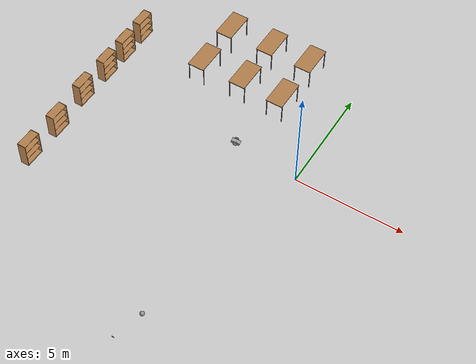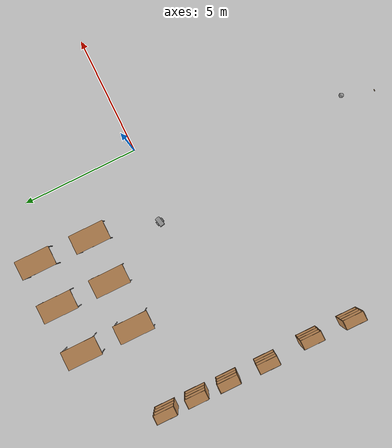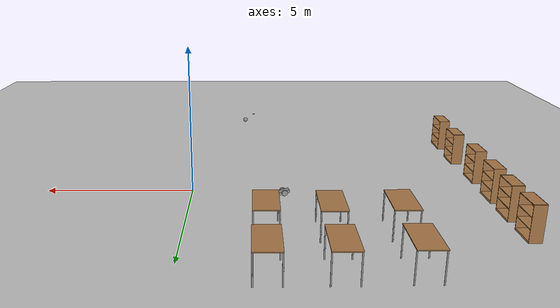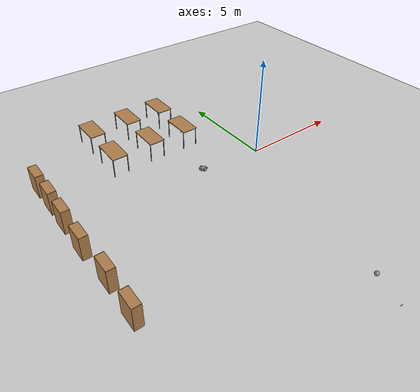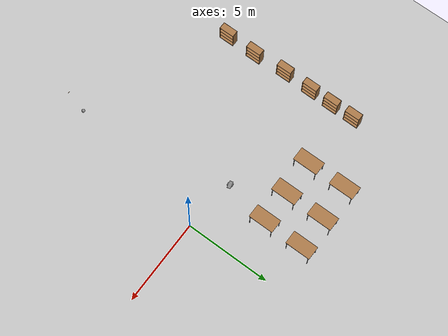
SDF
<sdf version="1.6">
 <world name="default">
  <model name="ground_plane">
   <static>1</static>
   <link name="link">
    <collision name="collision">
     <geometry><plane><normal>0 0 1</normal><size>100 100</size></plane></geometry>
     <surface>
      <contact><collide_bitmask>65535</collide_bitmask></contact>
      <friction><ode><mu>100</mu><mu2>50</mu2></ode></friction>
     </surface>
    </collision>
    <visual name="visual">
     <cast_shadows>0</cast_shadows>
     <geometry><plane><normal>0 0 1</normal><size>100 100</size></plane></geometry>
     <material>
      <script><uri>file://media/materials/scripts/gazebo.material</uri><name>Gazebo/Grey</name></script>
     </material>
    </visual>
   </link>
  </model>
  <model name="bookshelf">
   <static>1</static>
   <link name="link">
    <inertial><mass>1</mass></inertial>
    <collision name="back">
     <pose>0 0.005 0.6 0 -0 0</pose>
     <geometry><box><size>0.9 0.01 1.2</size></box></geometry>
    </collision>
    <visual name="visual1">
     <pose>0 0.005 0.6 0 -0 0</pose>
     <geometry><box><size>0.9 0.01 1.2</size></box></geometry>
     <material>
      <script><uri>file://media/materials/scripts/gazebo.material</uri><name>Gazebo/Wood</name></script>
     </material>
    </visual>
    <collision name="left_side">
     <pose>0.45 -0.195 0.6 0 -0 0</pose>
     <geometry><box><size>0.02 0.4 1.2</size></box></geometry>
    </collision>
    <visual name="visual2">
     <pose>0.45 -0.195 0.6 0 -0 0</pose>
     <geometry><box><size>0.02 0.4 1.2</size></box></geometry>
     <material>
      <script><uri>file://media/materials/scripts/gazebo.material</uri><name>Gazebo/Wood</name></script>
     </material>
    </visual>
    <collision name="right_side">
     <pose>-0.45 -0.195 0.6 0 -0 0</pose>
     <geometry><box><size>0.02 0.4 1.2</size></box></geometry>
    </collision>
    <visual name="visual3">
     <pose>-0.45 -0.195 0.6 0 -0 0</pose>
     <geometry><box><size>0.02 0.4 1.2</size></box></geometry>
     <material>
      <script><uri>file://media/materials/scripts/gazebo.material</uri><name>Gazebo/Wood</name></script>
     </material>
    </visual>
    <collision name="bottom">
     <pose>0 -0.195 0.03 0 -0 0</pose>
     <geometry><box><size>0.88 0.4 0.06</size></box></geometry>
    </collision>
    <visual name="visual4">
     <pose>0 -0.195 0.03 0 -0 0</pose>
     <geometry><box><size>0.88 0.4 0.06</size></box></geometry>
     <material>
      <script><uri>file://media/materials/scripts/gazebo.material</uri><name>Gazebo/Wood</name></script>
     </material>
    </visual>
    <collision name="top">
     <pose>0 -0.195 1.19 0 -0 0</pose>
     <geometry><box><size>0.88 0.4 0.02</size></box></geometry>
    </collision>
    <visual name="visual5">
     <pose>0 -0.195 1.19 0 -0 0</pose>
     <geometry><box><size>0.88 0.4 0.02</size></box></geometry>
     <material>
      <script><uri>file://media/materials/scripts/gazebo.material</uri><name>Gazebo/Wood</name></script>
     </material>
    </visual>
    <collision name="low_shelf">
     <pose>0 -0.195 0.43 0 -0 0</pose>
     <geometry><box><size>0.88 0.4 0.02</size></box></geometry>
    </collision>
    <visual name="visual6">
     <pose>0 -0.195 0.43 0 -0 0</pose>
     <geometry><box><size>0.88 0.4 0.02</size></box></geometry>
     <material>
      <script><uri>file://media/materials/scripts/gazebo.material</uri><name>Gazebo/Wood</name></script>
     </material>
    </visual>
    <collision name="high_shelf">
     <pose>0 -0.195 0.8 0 -0 0</pose>
     <geometry><box><size>0.88 0.4 0.02</size></box></geometry>
    </collision>
    <visual name="visual7">
     <pose>0 -0.195 0.8 0 -0 0</pose>
     <geometry><box><size>0.88 0.4 0.02</size></box></geometry>
     <material>
      <script><uri>file://media/materials/scripts/gazebo.material</uri><name>Gazebo/Wood</name></script>
     </material>
    </visual>
   </link>
   <pose>-10.3049 3.46726 0 0 -0 1.5708</pose>
  </model>
  <model name="table">
   <static>1</static>
   <link name="link">
    <collision name="surface">
     <pose>0 0 1 0 -0 0</pose>
     <geometry><box><size>1.5 0.8 0.03</size></box></geometry>
     <surface><friction><ode><mu>0.6</mu><mu2>0.6</mu2></ode></friction></surface>
    </collision>
    <visual name="visual1">
     <pose>0 0 1 0 -0 0</pose>
     <geometry><box><size>1.5 0.8 0.03</size></box></geometry>
     <material>
      <script><uri>file://media/materials/scripts/gazebo.material</uri><name>Gazebo/Wood</name></script>
     </material>
    </visual>
    <collision name="front_left_leg">
     <pose>0.68 0.38 0.5 0 -0 0</pose>
     <geometry><cylinder><radius>0.02</radius><length>1</length></cylinder></geometry>
    </collision>
    <visual name="front_left_leg">
     <pose>0.68 0.38 0.5 0 -0 0</pose>
     <geometry><cylinder><radius>0.02</radius><length>1</length></cylinder></geometry>
     <material>
      <script><uri>file://media/materials/scripts/gazebo.material</uri><name>Gazebo/Grey</name></script>
     </material>
    </visual>
    <collision name="front_right_leg">
     <pose>0.68 -0.38 0.5 0 -0 0</pose>
     <geometry><cylinder><radius>0.02</radius><length>1</length></cylinder></geometry>
    </collision>
    <visual name="front_right_leg">
     <pose>0.68 -0.38 0.5 0 -0 0</pose>
     <geometry><cylinder><radius>0.02</radius><length>1</length></cylinder></geometry>
     <material>
      <script><uri>file://media/materials/scripts/gazebo.material</uri><name>Gazebo/Grey</name></script>
     </material>
    </visual>
    <collision name="back_right_leg">
     <pose>-0.68 -0.38 0.5 0 -0 0</pose>
     <geometry><cylinder><radius>0.02</radius><length>1</length></cylinder></geometry>
    </collision>
    <visual name="back_right_leg">
     <pose>-0.68 -0.38 0.5 0 -0 0</pose>
     <geometry><cylinder><radius>0.02</radius><length>1</length></cylinder></geometry>
     <material>
      <script><uri>file://media/materials/scripts/gazebo.material</uri><name>Gazebo/Grey</name></script>
     </material>
    </visual>
    <collision name="back_left_leg">
     <pose>-0.68 0.38 0.5 0 -0 0</pose>
     <geometry><cylinder><radius>0.02</radius><length>1</length></cylinder></geometry>
    </collision>
    <visual name="back_left_leg">
     <pose>-0.68 0.38 0.5 0 -0 0</pose>
     <geometry><cylinder><radius>0.02</radius><length>1</length></cylinder></geometry>
     <material>
      <script><uri>file://media/materials/scripts/gazebo.material</uri><name>Gazebo/Grey</name></script>
     </material>
    </visual>
   </link>
   <pose>-6.47493 5.4138 0 0 -0 1.5708</pose>
  </model>
  <model name="wood_block_10_2_1cm">
   <link name="link">
    <pose>0 0 0.005 0 -0 0</pose>
    <inertial>
     <mass>0.0125</mass>
     <inertia>
      <ixx>7.55208e-07</ixx>
      <ixy>0</ixy>
      <ixz>0</ixz>
      <iyy>1.05208e-05</iyy>
      <iyz>0</iyz>
      <izz>1.10677e-05</izz>
     </inertia>
    </inertial>
    <collision name="collision">
     <geometry><box><size>0.1 0.025 0.01</size></box></geometry>
     <surface>
      <contact>
       <poissons_ratio>0.347</poissons_ratio>
       <elastic_modulus>8.8e+09</elastic_modulus>
       <ode><kp>100000</kp><kd>1</kd><max_vel>1</max_vel><min_depth>0.001</min_depth></ode>
      </contact>
      <friction>
       <torsional>
        <coefficient>1</coefficient>
        <use_patch_radius>0</use_patch_radius>
        <surface_radius>0.05</surface_radius>
       </torsional>
      </friction>
     </surface>
    </collision>
    <visual name="visual">
     <geometry><box><size>0.1 0.025 0.01</size></box></geometry>
     <material>
      <script><uri>file://media/materials/scripts/gazebo.material</uri><name>Gazebo/Wood</name></script>
     </material>
    </visual>
   </link>
   <pose>-2.12101 -10.0279 -0.001 0 -0 0</pose>
  </model>
  <model name="table_clone">
   <static>1</static>
   <link name="link">
    <collision name="surface">
     <pose>0 0 1 0 -0 0</pose>
     <geometry><box><size>1.5 0.8 0.03</size></box></geometry>
     <surface><friction><ode><mu>0.6</mu><mu2>0.6</mu2></ode></friction></surface>
    </collision>
    <visual name="visual1">
     <pose>0 0 1 0 -0 0</pose>
     <geometry><box><size>1.5 0.8 0.03</size></box></geometry>
     <material>
      <script><uri>file://media/materials/scripts/gazebo.material</uri><name>Gazebo/Wood</name></script>
     </material>
    </visual>
    <collision name="front_left_leg">
     <pose>0.68 0.38 0.5 0 -0 0</pose>
     <geometry><cylinder><radius>0.02</radius><length>1</length></cylinder></geometry>
    </collision>
    <visual name="front_left_leg">
     <pose>0.68 0.38 0.5 0 -0 0</pose>
     <geometry><cylinder><radius>0.02</radius><length>1</length></cylinder></geometry>
     <material>
      <script><uri>file://media/materials/scripts/gazebo.material</uri><name>Gazebo/Grey</name></script>
     </material>
    </visual>
    <collision name="front_right_leg">
     <pose>0.68 -0.38 0.5 0 -0 0</pose>
     <geometry><cylinder><radius>0.02</radius><length>1</length></cylinder></geometry>
    </collision>
    <visual name="front_right_leg">
     <pose>0.68 -0.38 0.5 0 -0 0</pose>
     <geometry><cylinder><radius>0.02</radius><length>1</length></cylinder></geometry>
     <material>
      <script><uri>file://media/materials/scripts/gazebo.material</uri><name>Gazebo/Grey</name></script>
     </material>
    </visual>
    <collision name="back_right_leg">
     <pose>-0.68 -0.38 0.5 0 -0 0</pose>
     <geometry><cylinder><radius>0.02</radius><length>1</length></cylinder></geometry>
    </collision>
    <visual name="back_right_leg">
     <pose>-0.68 -0.38 0.5 0 -0 0</pose>
     <geometry><cylinder><radius>0.02</radius><length>1</length></cylinder></geometry>
     <material>
      <script><uri>file://media/materials/scripts/gazebo.material</uri><name>Gazebo/Grey</name></script>
     </material>
    </visual>
    <collision name="back_left_leg">
     <pose>-0.68 0.38 0.5 0 -0 0</pose>
     <geometry><cylinder><radius>0.02</radius><length>1</length></cylinder></geometry>
    </collision>
    <visual name="back_left_leg">
     <pose>-0.68 0.38 0.5 0 -0 0</pose>
     <geometry><cylinder><radius>0.02</radius><length>1</length></cylinder></geometry>
     <material>
      <script><uri>file://media/materials/scripts/gazebo.material</uri><name>Gazebo/Grey</name></script>
     </material>
    </visual>
   </link>
   <pose>-4.38863 5.46598 0 0 -0 1.5708</pose>
  </model>
  <model name="table_clone_0">
   <static>1</static>
   <link name="link">
    <collision name="surface">
     <pose>0 0 1 0 -0 0</pose>
     <geometry><box><size>1.5 0.8 0.03</size></box></geometry>
     <surface><friction><ode><mu>0.6</mu><mu2>0.6</mu2></ode></friction></surface>
    </collision>
    <visual name="visual1">
     <pose>0 0 1 0 -0 0</pose>
     <geometry><box><size>1.5 0.8 0.03</size></box></geometry>
     <material>
      <script><uri>file://media/materials/scripts/gazebo.material</uri><name>Gazebo/Wood</name></script>
     </material>
    </visual>
    <collision name="front_left_leg">
     <pose>0.68 0.38 0.5 0 -0 0</pose>
     <geometry><cylinder><radius>0.02</radius><length>1</length></cylinder></geometry>
    </collision>
    <visual name="front_left_leg">
     <pose>0.68 0.38 0.5 0 -0 0</pose>
     <geometry><cylinder><radius>0.02</radius><length>1</length></cylinder></geometry>
     <material>
      <script><uri>file://media/materials/scripts/gazebo.material</uri><name>Gazebo/Grey</name></script>
     </material>
    </visual>
    <collision name="front_right_leg">
     <pose>0.68 -0.38 0.5 0 -0 0</pose>
     <geometry><cylinder><radius>0.02</radius><length>1</length></cylinder></geometry>
    </collision>
    <visual name="front_right_leg">
     <pose>0.68 -0.38 0.5 0 -0 0</pose>
     <geometry><cylinder><radius>0.02</radius><length>1</length></cylinder></geometry>
     <material>
      <script><uri>file://media/materials/scripts/gazebo.material</uri><name>Gazebo/Grey</name></script>
     </material>
    </visual>
    <collision name="back_right_leg">
     <pose>-0.68 -0.38 0.5 0 -0 0</pose>
     <geometry><cylinder><radius>0.02</radius><length>1</length></cylinder></geometry>
    </collision>
    <visual name="back_right_leg">
     <pose>-0.68 -0.38 0.5 0 -0 0</pose>
     <geometry><cylinder><radius>0.02</radius><length>1</length></cylinder></geometry>
     <material>
      <script><uri>file://media/materials/scripts/gazebo.material</uri><name>Gazebo/Grey</name></script>
     </material>
    </visual>
    <collision name="back_left_leg">
     <pose>-0.68 0.38 0.5 0 -0 0</pose>
     <geometry><cylinder><radius>0.02</radius><length>1</length></cylinder></geometry>
    </collision>
    <visual name="back_left_leg">
     <pose>-0.68 0.38 0.5 0 -0 0</pose>
     <geometry><cylinder><radius>0.02</radius><length>1</length></cylinder></geometry>
     <material>
      <script><uri>file://media/materials/scripts/gazebo.material</uri><name>Gazebo/Grey</name></script>
     </material>
    </visual>
   </link>
   <pose>-2.44462 5.48292 0 0 -0 1.5708</pose>
  </model>
  <model name="table_clone_7">
   <static>1</static>
   <link name="link">
    <collision name="surface">
     <pose>0 0 1 0 -0 0</pose>
     <geometry><box><size>1.5 0.8 0.03</size></box></geometry>
     <surface><friction><ode><mu>0.6</mu><mu2>0.6</mu2></ode></friction></surface>
    </collision>
    <visual name="visual1">
     <pose>0 0 1 0 -0 0</pose>
     <geometry><box><size>1.5 0.8 0.03</size></box></geometry>
     <material>
      <script><uri>file://media/materials/scripts/gazebo.material</uri><name>Gazebo/Wood</name></script>
     </material>
    </visual>
    <collision name="front_left_leg">
     <pose>0.68 0.38 0.5 0 -0 0</pose>
     <geometry><cylinder><radius>0.02</radius><length>1</length></cylinder></geometry>
    </collision>
    <visual name="front_left_leg">
     <pose>0.68 0.38 0.5 0 -0 0</pose>
     <geometry><cylinder><radius>0.02</radius><length>1</length></cylinder></geometry>
     <material>
      <script><uri>file://media/materials/scripts/gazebo.material</uri><name>Gazebo/Grey</name></script>
     </material>
    </visual>
    <collision name="front_right_leg">
     <pose>0.68 -0.38 0.5 0 -0 0</pose>
     <geometry><cylinder><radius>0.02</radius><length>1</length></cylinder></geometry>
    </collision>
    <visual name="front_right_leg">
     <pose>0.68 -0.38 0.5 0 -0 0</pose>
     <geometry><cylinder><radius>0.02</radius><length>1</length></cylinder></geometry>
     <material>
      <script><uri>file://media/materials/scripts/gazebo.material</uri><name>Gazebo/Grey</name></script>
     </material>
    </visual>
    <collision name="back_right_leg">
     <pose>-0.68 -0.38 0.5 0 -0 0</pose>
     <geometry><cylinder><radius>0.02</radius><length>1</length></cylinder></geometry>
    </collision>
    <visual name="back_right_leg">
     <pose>-0.68 -0.38 0.5 0 -0 0</pose>
     <geometry><cylinder><radius>0.02</radius><length>1</length></cylinder></geometry>
     <material>
      <script><uri>file://media/materials/scripts/gazebo.material</uri><name>Gazebo/Grey</name></script>
     </material>
    </visual>
    <collision name="back_left_leg">
     <pose>-0.68 0.38 0.5 0 -0 0</pose>
     <geometry><cylinder><radius>0.02</radius><length>1</length></cylinder></geometry>
    </collision>
    <visual name="back_left_leg">
     <pose>-0.68 0.38 0.5 0 -0 0</pose>
     <geometry><cylinder><radius>0.02</radius><length>1</length></cylinder></geometry>
     <material>
      <script><uri>file://media/materials/scripts/gazebo.material</uri><name>Gazebo/Grey</name></script>
     </material>
    </visual>
   </link>
   <pose>-2.46637 3.09661 0 0 -0 1.5708</pose>
  </model>
  <model name="table_clone_8">
   <static>1</static>
   <link name="link">
    <collision name="surface">
     <pose>0 0 1 0 -0 0</pose>
     <geometry><box><size>1.5 0.8 0.03</size></box></geometry>
     <surface><friction><ode><mu>0.6</mu><mu2>0.6</mu2></ode></friction></surface>
    </collision>
    <visual name="visual1">
     <pose>0 0 1 0 -0 0</pose>
     <geometry><box><size>1.5 0.8 0.03</size></box></geometry>
     <material>
      <script><uri>file://media/materials/scripts/gazebo.material</uri><name>Gazebo/Wood</name></script>
     </material>
    </visual>
    <collision name="front_left_leg">
     <pose>0.68 0.38 0.5 0 -0 0</pose>
     <geometry><cylinder><radius>0.02</radius><length>1</length></cylinder></geometry>
    </collision>
    <visual name="front_left_leg">
     <pose>0.68 0.38 0.5 0 -0 0</pose>
     <geometry><cylinder><radius>0.02</radius><length>1</length></cylinder></geometry>
     <material>
      <script><uri>file://media/materials/scripts/gazebo.material</uri><name>Gazebo/Grey</name></script>
     </material>
    </visual>
    <collision name="front_right_leg">
     <pose>0.68 -0.38 0.5 0 -0 0</pose>
     <geometry><cylinder><radius>0.02</radius><length>1</length></cylinder></geometry>
    </collision>
    <visual name="front_right_leg">
     <pose>0.68 -0.38 0.5 0 -0 0</pose>
     <geometry><cylinder><radius>0.02</radius><length>1</length></cylinder></geometry>
     <material>
      <script><uri>file://media/materials/scripts/gazebo.material</uri><name>Gazebo/Grey</name></script>
     </material>
    </visual>
    <collision name="back_right_leg">
     <pose>-0.68 -0.38 0.5 0 -0 0</pose>
     <geometry><cylinder><radius>0.02</radius><length>1</length></cylinder></geometry>
    </collision>
    <visual name="back_right_leg">
     <pose>-0.68 -0.38 0.5 0 -0 0</pose>
     <geometry><cylinder><radius>0.02</radius><length>1</length></cylinder></geometry>
     <material>
      <script><uri>file://media/materials/scripts/gazebo.material</uri><name>Gazebo/Grey</name></script>
     </material>
    </visual>
    <collision name="back_left_leg">
     <pose>-0.68 0.38 0.5 0 -0 0</pose>
     <geometry><cylinder><radius>0.02</radius><length>1</length></cylinder></geometry>
    </collision>
    <visual name="back_left_leg">
     <pose>-0.68 0.38 0.5 0 -0 0</pose>
     <geometry><cylinder><radius>0.02</radius><length>1</length></cylinder></geometry>
     <material>
      <script><uri>file://media/materials/scripts/gazebo.material</uri><name>Gazebo/Grey</name></script>
     </material>
    </visual>
   </link>
   <pose>-4.39006 3.15292 0 0 -0 1.5708</pose>
  </model>
  <model name="table_clone_9">
   <static>1</static>
   <link name="link">
    <collision name="surface">
     <pose>0 0 1 0 -0 0</pose>
     <geometry><box><size>1.5 0.8 0.03</size></box></geometry>
     <surface><friction><ode><mu>0.6</mu><mu2>0.6</mu2></ode></friction></surface>
    </collision>
    <visual name="visual1">
     <pose>0 0 1 0 -0 0</pose>
     <geometry><box><size>1.5 0.8 0.03</size></box></geometry>
     <material>
      <script><uri>file://media/materials/scripts/gazebo.material</uri><name>Gazebo/Wood</name></script>
     </material>
    </visual>
    <collision name="front_left_leg">
     <pose>0.68 0.38 0.5 0 -0 0</pose>
     <geometry><cylinder><radius>0.02</radius><length>1</length></cylinder></geometry>
    </collision>
    <visual name="front_left_leg">
     <pose>0.68 0.38 0.5 0 -0 0</pose>
     <geometry><cylinder><radius>0.02</radius><length>1</length></cylinder></geometry>
     <material>
      <script><uri>file://media/materials/scripts/gazebo.material</uri><name>Gazebo/Grey</name></script>
     </material>
    </visual>
    <collision name="front_right_leg">
     <pose>0.68 -0.38 0.5 0 -0 0</pose>
     <geometry><cylinder><radius>0.02</radius><length>1</length></cylinder></geometry>
    </collision>
    <visual name="front_right_leg">
     <pose>0.68 -0.38 0.5 0 -0 0</pose>
     <geometry><cylinder><radius>0.02</radius><length>1</length></cylinder></geometry>
     <material>
      <script><uri>file://media/materials/scripts/gazebo.material</uri><name>Gazebo/Grey</name></script>
     </material>
    </visual>
    <collision name="back_right_leg">
     <pose>-0.68 -0.38 0.5 0 -0 0</pose>
     <geometry><cylinder><radius>0.02</radius><length>1</length></cylinder></geometry>
    </collision>
    <visual name="back_right_leg">
     <pose>-0.68 -0.38 0.5 0 -0 0</pose>
     <geometry><cylinder><radius>0.02</radius><length>1</length></cylinder></geometry>
     <material>
      <script><uri>file://media/materials/scripts/gazebo.material</uri><name>Gazebo/Grey</name></script>
     </material>
    </visual>
    <collision name="back_left_leg">
     <pose>-0.68 0.38 0.5 0 -0 0</pose>
     <geometry><cylinder><radius>0.02</radius><length>1</length></cylinder></geometry>
    </collision>
    <visual name="back_left_leg">
     <pose>-0.68 0.38 0.5 0 -0 0</pose>
     <geometry><cylinder><radius>0.02</radius><length>1</length></cylinder></geometry>
     <material>
      <script><uri>file://media/materials/scripts/gazebo.material</uri><name>Gazebo/Grey</name></script>
     </material>
    </visual>
   </link>
   <pose>-6.46278 3.09631 0 0 -0 1.5708</pose>
  </model>
  <model name="bookshelf_clone">
   <static>1</static>
   <link name="link">
    <inertial><mass>1</mass></inertial>
    <collision name="back">
     <pose>0 0.005 0.6 0 -0 0</pose>
     <geometry><box><size>0.9 0.01 1.2</size></box></geometry>
    </collision>
    <visual name="visual1">
     <pose>0 0.005 0.6 0 -0 0</pose>
     <geometry><box><size>0.9 0.01 1.2</size></box></geometry>
     <material>
      <script><uri>file://media/materials/scripts/gazebo.material</uri><name>Gazebo/Wood</name></script>
     </material>
    </visual>
    <collision name="left_side">
     <pose>0.45 -0.195 0.6 0 -0 0</pose>
     <geometry><box><size>0.02 0.4 1.2</size></box></geometry>
    </collision>
    <visual name="visual2">
     <pose>0.45 -0.195 0.6 0 -0 0</pose>
     <geometry><box><size>0.02 0.4 1.2</size></box></geometry>
     <material>
      <script><uri>file://media/materials/scripts/gazebo.material</uri><name>Gazebo/Wood</name></script>
     </material>
    </visual>
    <collision name="right_side">
     <pose>-0.45 -0.195 0.6 0 -0 0</pose>
     <geometry><box><size>0.02 0.4 1.2</size></box></geometry>
    </collision>
    <visual name="visual3">
     <pose>-0.45 -0.195 0.6 0 -0 0</pose>
     <geometry><box><size>0.02 0.4 1.2</size></box></geometry>
     <material>
      <script><uri>file://media/materials/scripts/gazebo.material</uri><name>Gazebo/Wood</name></script>
     </material>
    </visual>
    <collision name="bottom">
     <pose>0 -0.195 0.03 0 -0 0</pose>
     <geometry><box><size>0.88 0.4 0.06</size></box></geometry>
    </collision>
    <visual name="visual4">
     <pose>0 -0.195 0.03 0 -0 0</pose>
     <geometry><box><size>0.88 0.4 0.06</size></box></geometry>
     <material>
      <script><uri>file://media/materials/scripts/gazebo.material</uri><name>Gazebo/Wood</name></script>
     </material>
    </visual>
    <collision name="top">
     <pose>0 -0.195 1.19 0 -0 0</pose>
     <geometry><box><size>0.88 0.4 0.02</size></box></geometry>
    </collision>
    <visual name="visual5">
     <pose>0 -0.195 1.19 0 -0 0</pose>
     <geometry><box><size>0.88 0.4 0.02</size></box></geometry>
     <material>
      <script><uri>file://media/materials/scripts/gazebo.material</uri><name>Gazebo/Wood</name></script>
     </material>
    </visual>
    <collision name="low_shelf">
     <pose>0 -0.195 0.43 0 -0 0</pose>
     <geometry><box><size>0.88 0.4 0.02</size></box></geometry>
    </collision>
    <visual name="visual6">
     <pose>0 -0.195 0.43 0 -0 0</pose>
     <geometry><box><size>0.88 0.4 0.02</size></box></geometry>
     <material>
      <script><uri>file://media/materials/scripts/gazebo.material</uri><name>Gazebo/Wood</name></script>
     </material>
    </visual>
    <collision name="high_shelf">
     <pose>0 -0.195 0.8 0 -0 0</pose>
     <geometry><box><size>0.88 0.4 0.02</size></box></geometry>
    </collision>
    <visual name="visual7">
     <pose>0 -0.195 0.8 0 -0 0</pose>
     <geometry><box><size>0.88 0.4 0.02</size></box></geometry>
     <material>
      <script><uri>file://media/materials/scripts/gazebo.material</uri><name>Gazebo/Wood</name></script>
     </material>
    </visual>
   </link>
   <pose>-10.2826 2.07607 0 0 -0 1.5708</pose>
  </model>
  <model name="bookshelf_clone_0">
   <static>1</static>
   <link name="link">
    <inertial><mass>1</mass></inertial>
    <collision name="back">
     <pose>0 0.005 0.6 0 -0 0</pose>
     <geometry><box><size>0.9 0.01 1.2</size></box></geometry>
    </collision>
    <visual name="visual1">
     <pose>0 0.005 0.6 0 -0 0</pose>
     <geometry><box><size>0.9 0.01 1.2</size></box></geometry>
     <material>
      <script><uri>file://media/materials/scripts/gazebo.material</uri><name>Gazebo/Wood</name></script>
     </material>
    </visual>
    <collision name="left_side">
     <pose>0.45 -0.195 0.6 0 -0 0</pose>
     <geometry><box><size>0.02 0.4 1.2</size></box></geometry>
    </collision>
    <visual name="visual2">
     <pose>0.45 -0.195 0.6 0 -0 0</pose>
     <geometry><box><size>0.02 0.4 1.2</size></box></geometry>
     <material>
      <script><uri>file://media/materials/scripts/gazebo.material</uri><name>Gazebo/Wood</name></script>
     </material>
    </visual>
    <collision name="right_side">
     <pose>-0.45 -0.195 0.6 0 -0 0</pose>
     <geometry><box><size>0.02 0.4 1.2</size></box></geometry>
    </collision>
    <visual name="visual3">
     <pose>-0.45 -0.195 0.6 0 -0 0</pose>
     <geometry><box><size>0.02 0.4 1.2</size></box></geometry>
     <material>
      <script><uri>file://media/materials/scripts/gazebo.material</uri><name>Gazebo/Wood</name></script>
     </material>
    </visual>
    <collision name="bottom">
     <pose>0 -0.195 0.03 0 -0 0</pose>
     <geometry><box><size>0.88 0.4 0.06</size></box></geometry>
    </collision>
    <visual name="visual4">
     <pose>0 -0.195 0.03 0 -0 0</pose>
     <geometry><box><size>0.88 0.4 0.06</size></box></geometry>
     <material>
      <script><uri>file://media/materials/scripts/gazebo.material</uri><name>Gazebo/Wood</name></script>
     </material>
    </visual>
    <collision name="top">
     <pose>0 -0.195 1.19 0 -0 0</pose>
     <geometry><box><size>0.88 0.4 0.02</size></box></geometry>
    </collision>
    <visual name="visual5">
     <pose>0 -0.195 1.19 0 -0 0</pose>
     <geometry><box><size>0.88 0.4 0.02</size></box></geometry>
     <material>
      <script><uri>file://media/materials/scripts/gazebo.material</uri><name>Gazebo/Wood</name></script>
     </material>
    </visual>
    <collision name="low_shelf">
     <pose>0 -0.195 0.43 0 -0 0</pose>
     <geometry><box><size>0.88 0.4 0.02</size></box></geometry>
    </collision>
    <visual name="visual6">
     <pose>0 -0.195 0.43 0 -0 0</pose>
     <geometry><box><size>0.88 0.4 0.02</size></box></geometry>
     <material>
      <script><uri>file://media/materials/scripts/gazebo.material</uri><name>Gazebo/Wood</name></script>
     </material>
    </visual>
    <collision name="high_shelf">
     <pose>0 -0.195 0.8 0 -0 0</pose>
     <geometry><box><size>0.88 0.4 0.02</size></box></geometry>
    </collision>
    <visual name="visual7">
     <pose>0 -0.195 0.8 0 -0 0</pose>
     <geometry><box><size>0.88 0.4 0.02</size></box></geometry>
     <material>
      <script><uri>file://media/materials/scripts/gazebo.material</uri><name>Gazebo/Wood</name></script>
     </material>
    </visual>
   </link>
   <pose>-10.2947 0.66231 0 0 -0 1.5708</pose>
  </model>
  <model name="bookshelf_clone_1">
   <static>1</static>
   <link name="link">
    <inertial><mass>1</mass></inertial>
    <collision name="back">
     <pose>0 0.005 0.6 0 -0 0</pose>
     <geometry><box><size>0.9 0.01 1.2</size></box></geometry>
    </collision>
    <visual name="visual1">
     <pose>0 0.005 0.6 0 -0 0</pose>
     <geometry><box><size>0.9 0.01 1.2</size></box></geometry>
     <material>
      <script><uri>file://media/materials/scripts/gazebo.material</uri><name>Gazebo/Wood</name></script>
     </material>
    </visual>
    <collision name="left_side">
     <pose>0.45 -0.195 0.6 0 -0 0</pose>
     <geometry><box><size>0.02 0.4 1.2</size></box></geometry>
    </collision>
    <visual name="visual2">
     <pose>0.45 -0.195 0.6 0 -0 0</pose>
     <geometry><box><size>0.02 0.4 1.2</size></box></geometry>
     <material>
      <script><uri>file://media/materials/scripts/gazebo.material</uri><name>Gazebo/Wood</name></script>
     </material>
    </visual>
    <collision name="right_side">
     <pose>-0.45 -0.195 0.6 0 -0 0</pose>
     <geometry><box><size>0.02 0.4 1.2</size></box></geometry>
    </collision>
    <visual name="visual3">
     <pose>-0.45 -0.195 0.6 0 -0 0</pose>
     <geometry><box><size>0.02 0.4 1.2</size></box></geometry>
     <material>
      <script><uri>file://media/materials/scripts/gazebo.material</uri><name>Gazebo/Wood</name></script>
     </material>
    </visual>
    <collision name="bottom">
     <pose>0 -0.195 0.03 0 -0 0</pose>
     <geometry><box><size>0.88 0.4 0.06</size></box></geometry>
    </collision>
    <visual name="visual4">
     <pose>0 -0.195 0.03 0 -0 0</pose>
     <geometry><box><size>0.88 0.4 0.06</size></box></geometry>
     <material>
      <script><uri>file://media/materials/scripts/gazebo.material</uri><name>Gazebo/Wood</name></script>
     </material>
    </visual>
    <collision name="top">
     <pose>0 -0.195 1.19 0 -0 0</pose>
     <geometry><box><size>0.88 0.4 0.02</size></box></geometry>
    </collision>
    <visual name="visual5">
     <pose>0 -0.195 1.19 0 -0 0</pose>
     <geometry><box><size>0.88 0.4 0.02</size></box></geometry>
     <material>
      <script><uri>file://media/materials/scripts/gazebo.material</uri><name>Gazebo/Wood</name></script>
     </material>
    </visual>
    <collision name="low_shelf">
     <pose>0 -0.195 0.43 0 -0 0</pose>
     <geometry><box><size>0.88 0.4 0.02</size></box></geometry>
    </collision>
    <visual name="visual6">
     <pose>0 -0.195 0.43 0 -0 0</pose>
     <geometry><box><size>0.88 0.4 0.02</size></box></geometry>
     <material>
      <script><uri>file://media/materials/scripts/gazebo.material</uri><name>Gazebo/Wood</name></script>
     </material>
    </visual>
    <collision name="high_shelf">
     <pose>0 -0.195 0.8 0 -0 0</pose>
     <geometry><box><size>0.88 0.4 0.02</size></box></geometry>
    </collision>
    <visual name="visual7">
     <pose>0 -0.195 0.8 0 -0 0</pose>
     <geometry><box><size>0.88 0.4 0.02</size></box></geometry>
     <material>
      <script><uri>file://media/materials/scripts/gazebo.material</uri><name>Gazebo/Wood</name></script>
     </material>
    </visual>
   </link>
   <pose>-10.3115 -1.06915 0 0 -0 1.5708</pose>
  </model>
  <model name="bookshelf_clone_2">
   <static>1</static>
   <link name="link">
    <inertial><mass>1</mass></inertial>
    <collision name="back">
     <pose>0 0.005 0.6 0 -0 0</pose>
     <geometry><box><size>0.9 0.01 1.2</size></box></geometry>
    </collision>
    <visual name="visual1">
     <pose>0 0.005 0.6 0 -0 0</pose>
     <geometry><box><size>0.9 0.01 1.2</size></box></geometry>
     <material>
      <script><uri>file://media/materials/scripts/gazebo.material</uri><name>Gazebo/Wood</name></script>
     </material>
    </visual>
    <collision name="left_side">
     <pose>0.45 -0.195 0.6 0 -0 0</pose>
     <geometry><box><size>0.02 0.4 1.2</size></box></geometry>
    </collision>
    <visual name="visual2">
     <pose>0.45 -0.195 0.6 0 -0 0</pose>
     <geometry><box><size>0.02 0.4 1.2</size></box></geometry>
     <material>
      <script><uri>file://media/materials/scripts/gazebo.material</uri><name>Gazebo/Wood</name></script>
     </material>
    </visual>
    <collision name="right_side">
     <pose>-0.45 -0.195 0.6 0 -0 0</pose>
     <geometry><box><size>0.02 0.4 1.2</size></box></geometry>
    </collision>
    <visual name="visual3">
     <pose>-0.45 -0.195 0.6 0 -0 0</pose>
     <geometry><box><size>0.02 0.4 1.2</size></box></geometry>
     <material>
      <script><uri>file://media/materials/scripts/gazebo.material</uri><name>Gazebo/Wood</name></script>
     </material>
    </visual>
    <collision name="bottom">
     <pose>0 -0.195 0.03 0 -0 0</pose>
     <geometry><box><size>0.88 0.4 0.06</size></box></geometry>
    </collision>
    <visual name="visual4">
     <pose>0 -0.195 0.03 0 -0 0</pose>
     <geometry><box><size>0.88 0.4 0.06</size></box></geometry>
     <material>
      <script><uri>file://media/materials/scripts/gazebo.material</uri><name>Gazebo/Wood</name></script>
     </material>
    </visual>
    <collision name="top">
     <pose>0 -0.195 1.19 0 -0 0</pose>
     <geometry><box><size>0.88 0.4 0.02</size></box></geometry>
    </collision>
    <visual name="visual5">
     <pose>0 -0.195 1.19 0 -0 0</pose>
     <geometry><box><size>0.88 0.4 0.02</size></box></geometry>
     <material>
      <script><uri>file://media/materials/scripts/gazebo.material</uri><name>Gazebo/Wood</name></script>
     </material>
    </visual>
    <collision name="low_shelf">
     <pose>0 -0.195 0.43 0 -0 0</pose>
     <geometry><box><size>0.88 0.4 0.02</size></box></geometry>
    </collision>
    <visual name="visual6">
     <pose>0 -0.195 0.43 0 -0 0</pose>
     <geometry><box><size>0.88 0.4 0.02</size></box></geometry>
     <material>
      <script><uri>file://media/materials/scripts/gazebo.material</uri><name>Gazebo/Wood</name></script>
     </material>
    </visual>
    <collision name="high_shelf">
     <pose>0 -0.195 0.8 0 -0 0</pose>
     <geometry><box><size>0.88 0.4 0.02</size></box></geometry>
    </collision>
    <visual name="visual7">
     <pose>0 -0.195 0.8 0 -0 0</pose>
     <geometry><box><size>0.88 0.4 0.02</size></box></geometry>
     <material>
      <script><uri>file://media/materials/scripts/gazebo.material</uri><name>Gazebo/Wood</name></script>
     </material>
    </visual>
   </link>
   <pose>-10.1969 -3.06233 0 0 -0 1.5708</pose>
  </model>
  <model name="bookshelf_clone_3">
   <static>1</static>
   <link name="link">
    <inertial><mass>1</mass></inertial>
    <collision name="back">
     <pose>0 0.005 0.6 0 -0 0</pose>
     <geometry><box><size>0.9 0.01 1.2</size></box></geometry>
    </collision>
    <visual name="visual1">
     <pose>0 0.005 0.6 0 -0 0</pose>
     <geometry><box><size>0.9 0.01 1.2</size></box></geometry>
     <material>
      <script><uri>file://media/materials/scripts/gazebo.material</uri><name>Gazebo/Wood</name></script>
     </material>
    </visual>
    <collision name="left_side">
     <pose>0.45 -0.195 0.6 0 -0 0</pose>
     <geometry><box><size>0.02 0.4 1.2</size></box></geometry>
    </collision>
    <visual name="visual2">
     <pose>0.45 -0.195 0.6 0 -0 0</pose>
     <geometry><box><size>0.02 0.4 1.2</size></box></geometry>
     <material>
      <script><uri>file://media/materials/scripts/gazebo.material</uri><name>Gazebo/Wood</name></script>
     </material>
    </visual>
    <collision name="right_side">
     <pose>-0.45 -0.195 0.6 0 -0 0</pose>
     <geometry><box><size>0.02 0.4 1.2</size></box></geometry>
    </collision>
    <visual name="visual3">
     <pose>-0.45 -0.195 0.6 0 -0 0</pose>
     <geometry><box><size>0.02 0.4 1.2</size></box></geometry>
     <material>
      <script><uri>file://media/materials/scripts/gazebo.material</uri><name>Gazebo/Wood</name></script>
     </material>
    </visual>
    <collision name="bottom">
     <pose>0 -0.195 0.03 0 -0 0</pose>
     <geometry><box><size>0.88 0.4 0.06</size></box></geometry>
    </collision>
    <visual name="visual4">
     <pose>0 -0.195 0.03 0 -0 0</pose>
     <geometry><box><size>0.88 0.4 0.06</size></box></geometry>
     <material>
      <script><uri>file://media/materials/scripts/gazebo.material</uri><name>Gazebo/Wood</name></script>
     </material>
    </visual>
    <collision name="top">
     <pose>0 -0.195 1.19 0 -0 0</pose>
     <geometry><box><size>0.88 0.4 0.02</size></box></geometry>
    </collision>
    <visual name="visual5">
     <pose>0 -0.195 1.19 0 -0 0</pose>
     <geometry><box><size>0.88 0.4 0.02</size></box></geometry>
     <material>
      <script><uri>file://media/materials/scripts/gazebo.material</uri><name>Gazebo/Wood</name></script>
     </material>
    </visual>
    <collision name="low_shelf">
     <pose>0 -0.195 0.43 0 -0 0</pose>
     <geometry><box><size>0.88 0.4 0.02</size></box></geometry>
    </collision>
    <visual name="visual6">
     <pose>0 -0.195 0.43 0 -0 0</pose>
     <geometry><box><size>0.88 0.4 0.02</size></box></geometry>
     <material>
      <script><uri>file://media/materials/scripts/gazebo.material</uri><name>Gazebo/Wood</name></script>
     </material>
    </visual>
    <collision name="high_shelf">
     <pose>0 -0.195 0.8 0 -0 0</pose>
     <geometry><box><size>0.88 0.4 0.02</size></box></geometry>
    </collision>
    <visual name="visual7">
     <pose>0 -0.195 0.8 0 -0 0</pose>
     <geometry><box><size>0.88 0.4 0.02</size></box></geometry>
     <material>
      <script><uri>file://media/materials/scripts/gazebo.material</uri><name>Gazebo/Wood</name></script>
     </material>
    </visual>
   </link>
   <pose>-10.2254 -4.90864 0 0 -0 1.5708</pose>
  </model>
  <model name="Robot2WD_0">
   <link name="link_0">
    <inertial>
     <mass>1</mass>
     <inertia>
      <ixx>0.166667</ixx>
      <ixy>0</ixy>
      <ixz>0</ixz>
      <iyy>0.166667</iyy>
      <iyz>0</iyz>
      <izz>0.166667</izz>
     </inertia>
    </inertial>
    <pose>0.006667 -1e-06 0 0 -0 0</pose>
    <visual name="visual">
     <geometry><box><size>0.4 0.2 0.1</size></box></geometry>
     <material>
      <lighting>1</lighting>
      <script><uri>file://media/materials/scripts/gazebo.material</uri><name>Gazebo/Grey</name></script>
      <shader type="vertex"><normal_map>__default__</normal_map></shader>
      <ambient>0.3 0.3 0.3 1</ambient>
      <diffuse>0.7 0.7 0.7 1</diffuse>
      <specular>0.01 0.01 0.01 1</specular>
      <emissive>0 0 0 1</emissive>
     </material>
    </visual>
    <collision name="collision">
     <geometry><box><size>0.4 0.2 0.1</size></box></geometry>
     <surface>
      <friction>
       <ode><mu>1</mu><mu2>1</mu2><fdir1>0 0 0</fdir1><slip1>0</slip1><slip2>0</slip2></ode>
       <torsional>
        <coefficient>1</coefficient>
        <patch_radius>0</patch_radius>
        <surface_radius>0</surface_radius>
        <use_patch_radius>1</use_patch_radius>
        <ode><slip>0</slip></ode>
       </torsional>
      </friction>
      <bounce><restitution_coefficient>0</restitution_coefficient><threshold>1e+06</threshold></bounce>
      <contact>
       <collide_without_contact>0</collide_without_contact>
       <collide_without_contact_bitmask>1</collide_without_contact_bitmask>
       <collide_bitmask>1</collide_bitmask>
       <ode>
        <soft_cfm>0</soft_cfm>
        <soft_erp>0.2</soft_erp>
        <kp>1e+13</kp>
        <kd>1</kd>
        <max_vel>0.01</max_vel>
        <min_depth>0</min_depth>
       </ode>
       <bullet>
        <split_impulse>1</split_impulse>
        <split_impulse_penetration_threshold>-0.01</split_impulse_penetration_threshold>
        <soft_cfm>0</soft_cfm>
        <soft_erp>0.2</soft_erp>
        <kp>1e+13</kp>
        <kd>1</kd>
       </bullet>
      </contact>
     </surface>
    </collision>
   </link>
   <link name="link_1">
    <inertial>
     <mass>1</mass>
     <inertia><ixx>0.145833</ixx><ixy>0</ixy><ixz>0</ixz><iyy>0.145833</iyy><iyz>0</iyz><izz>0.125</izz></inertia>
    </inertial>
    <pose>-0.013333 0.125012 0 1.5707 -0 0</pose>
    <visual name="visual">
     <geometry><cylinder><radius>0.1</radius><length>0.05</length></cylinder></geometry>
     <material>
      <lighting>1</lighting>
      <script><uri>file://media/materials/scripts/gazebo.material</uri><name>Gazebo/Grey</name></script>
      <shader type="vertex"><normal_map>__default__</normal_map></shader>
      <ambient>0.3 0.3 0.3 1</ambient>
      <diffuse>0.7 0.7 0.7 1</diffuse>
      <specular>0.01 0.01 0.01 1</specular>
      <emissive>0 0 0 1</emissive>
     </material>
    </visual>
    <collision name="collision">
     <geometry><cylinder><radius>0.1</radius><length>0.05</length></cylinder></geometry>
     <surface>
      <friction>
       <ode><mu>1</mu><mu2>1</mu2><fdir1>0 0 0</fdir1><slip1>0</slip1><slip2>0</slip2></ode>
       <torsional>
        <coefficient>1</coefficient>
        <patch_radius>0</patch_radius>
        <surface_radius>0</surface_radius>
        <use_patch_radius>1</use_patch_radius>
        <ode><slip>0</slip></ode>
       </torsional>
      </friction>
      <bounce><restitution_coefficient>0</restitution_coefficient><threshold>1e+06</threshold></bounce>
      <contact>
       <collide_without_contact>0</collide_without_contact>
       <collide_without_contact_bitmask>1</collide_without_contact_bitmask>
       <collide_bitmask>1</collide_bitmask>
       <ode>
        <soft_cfm>0</soft_cfm>
        <soft_erp>0.2</soft_erp>
        <kp>1e+13</kp>
        <kd>1</kd>
        <max_vel>0.01</max_vel>
        <min_depth>0</min_depth>
       </ode>
       <bullet>
        <split_impulse>1</split_impulse>
        <split_impulse_penetration_threshold>-0.01</split_impulse_penetration_threshold>
        <soft_cfm>0</soft_cfm>
        <soft_erp>0.2</soft_erp>
        <kp>1e+13</kp>
        <kd>1</kd>
       </bullet>
      </contact>
     </surface>
    </collision>
   </link>
   <link name="link_1_clone">
    <inertial>
     <mass>1</mass>
     <inertia><ixx>0.145833</ixx><ixy>0</ixy><ixz>0</ixz><iyy>0.145833</iyy><iyz>0</iyz><izz>0.125</izz></inertia>
    </inertial>
    <pose>0.006667 -0.125011 0 1.5707 -0 0</pose>
    <visual name="visual">
     <geometry><cylinder><radius>0.1</radius><length>0.05</length></cylinder></geometry>
     <material>
      <lighting>1</lighting>
      <script><uri>file://media/materials/scripts/gazebo.material</uri><name>Gazebo/Grey</name></script>
      <shader type="vertex"><normal_map>__default__</normal_map></shader>
      <ambient>0.3 0.3 0.3 1</ambient>
      <diffuse>0.7 0.7 0.7 1</diffuse>
      <specular>0.01 0.01 0.01 1</specular>
      <emissive>0 0 0 1</emissive>
     </material>
    </visual>
    <collision name="collision">
     <geometry><cylinder><radius>0.1</radius><length>0.05</length></cylinder></geometry>
     <surface>
      <friction>
       <ode><mu>1</mu><mu2>1</mu2><fdir1>0 0 0</fdir1><slip1>0</slip1><slip2>0</slip2></ode>
       <torsional>
        <coefficient>1</coefficient>
        <patch_radius>0</patch_radius>
        <surface_radius>0</surface_radius>
        <use_patch_radius>1</use_patch_radius>
        <ode><slip>0</slip></ode>
       </torsional>
      </friction>
      <bounce><restitution_coefficient>0</restitution_coefficient><threshold>1e+06</threshold></bounce>
      <contact>
       <collide_without_contact>0</collide_without_contact>
       <collide_without_contact_bitmask>1</collide_without_contact_bitmask>
       <collide_bitmask>1</collide_bitmask>
       <ode>
        <soft_cfm>0</soft_cfm>
        <soft_erp>0.2</soft_erp>
        <kp>1e+13</kp>
        <kd>1</kd>
        <max_vel>0.01</max_vel>
        <min_depth>0</min_depth>
       </ode>
       <bullet>
        <split_impulse>1</split_impulse>
        <split_impulse_penetration_threshold>-0.01</split_impulse_penetration_threshold>
        <soft_cfm>0</soft_cfm>
        <soft_erp>0.2</soft_erp>
        <kp>1e+13</kp>
        <kd>1</kd>
       </bullet>
      </contact>
     </surface>
    </collision>
   </link>
   <joint name="link_0_JOINT_1" type="revolute">
    <parent>link_0</parent>
    <child>link_1</child>
    <axis>
     <xyz>0 0 1</xyz>
     <use_parent_model_frame>0</use_parent_model_frame>
     <limit>
      <lower>-1.79769e+308</lower>
      <upper>1.79769e+308</upper>
      <effort>-1</effort>
      <velocity>-1</velocity>
     </limit>
     <dynamics>
      <spring_reference>0</spring_reference>
      <spring_stiffness>0</spring_stiffness>
      <damping>0</damping>
     </dynamics>
    </axis>
    <physics>
     <ode><limit><cfm>0</cfm><erp>0.2</erp></limit><suspension><cfm>0</cfm><erp>0.2</erp></suspension></ode>
    </physics>
   </joint>
   <joint name="link_0_JOINT_2" type="revolute">
    <parent>link_0</parent>
    <child>link_1_clone</child>
    <axis>
     <xyz>0 0 1</xyz>
     <use_parent_model_frame>0</use_parent_model_frame>
     <limit>
      <lower>-1.79769e+308</lower>
      <upper>1.79769e+308</upper>
      <effort>-1</effort>
      <velocity>-1</velocity>
     </limit>
     <dynamics>
      <spring_reference>0</spring_reference>
      <spring_stiffness>0</spring_stiffness>
      <damping>0</damping>
     </dynamics>
    </axis>
    <physics>
     <ode><limit><cfm>0</cfm><erp>0.2</erp></limit><suspension><cfm>0</cfm><erp>0.2</erp></suspension></ode>
    </physics>
   </joint>
   <static>0</static>
   <pose>-3.12617 0.346669 0.099668 -0.019579 0.240097 0.210093</pose>
  </model>
  <model name="my_ball">
   <link name="link">
    <inertial>
     <mass>1</mass>
     <inertia><ixx>0.1</ixx><ixy>0</ixy><ixz>0</ixz><iyy>0.1</iyy><iyz>0</iyz><izz>0.1</izz></inertia>
    </inertial>
    <pose>0 0.751437 0 0 -0 0</pose>
    <visual name="visual">
     <geometry><sphere><radius>0.1</radius></sphere></geometry>
     <material>
      <script><name>Gazebo/Grey</name><uri>file://media/materials/scripts/gazebo.material</uri></script>
      <shader type="vertex"><normal_map>__default__</normal_map></shader>
      <ambient>1 1 1 1</ambient>
      <diffuse>1 1 1 1</diffuse>
      <specular>1 1 1 1</specular>
      <emissive>1 1 1 1</emissive>
     </material>
    </visual>
    <collision name="collision">
     <geometry><sphere><radius>0.1</radius></sphere></geometry>
     <surface>
      <friction>
       <ode><mu>1</mu><mu2>1</mu2><fdir1>0 0 0</fdir1><slip1>0</slip1><slip2>0</slip2></ode>
       <torsional>
        <coefficient>1</coefficient>
        <patch_radius>0</patch_radius>
        <surface_radius>0</surface_radius>
        <use_patch_radius>1</use_patch_radius>
        <ode><slip>0</slip></ode>
       </torsional>
      </friction>
      <bounce><restitution_coefficient>0</restitution_coefficient><threshold>1e+06</threshold></bounce>
      <contact>
       <collide_without_contact>0</collide_without_contact>
       <collide_without_contact_bitmask>1</collide_without_contact_bitmask>
       <collide_bitmask>1</collide_bitmask>
       <ode>
        <soft_cfm>0</soft_cfm>
        <soft_erp>0.2</soft_erp>
        <kp>1e+13</kp>
        <kd>1</kd>
        <max_vel>0.01</max_vel>
        <min_depth>0</min_depth>
       </ode>
       <bullet>
        <split_impulse>1</split_impulse>
        <split_impulse_penetration_threshold>-0.01</split_impulse_penetration_threshold>
        <soft_cfm>0</soft_cfm>
        <soft_erp>0.2</soft_erp>
        <kp>1e+13</kp>
        <kd>1</kd>
       </bullet>
      </contact>
     </surface>
    </collision>
   </link>
   <static>0</static>
   <pose>-1.72184 -9.42075 0.1 0 -0 0</pose>
  </model>
 </world>
</sdf>
